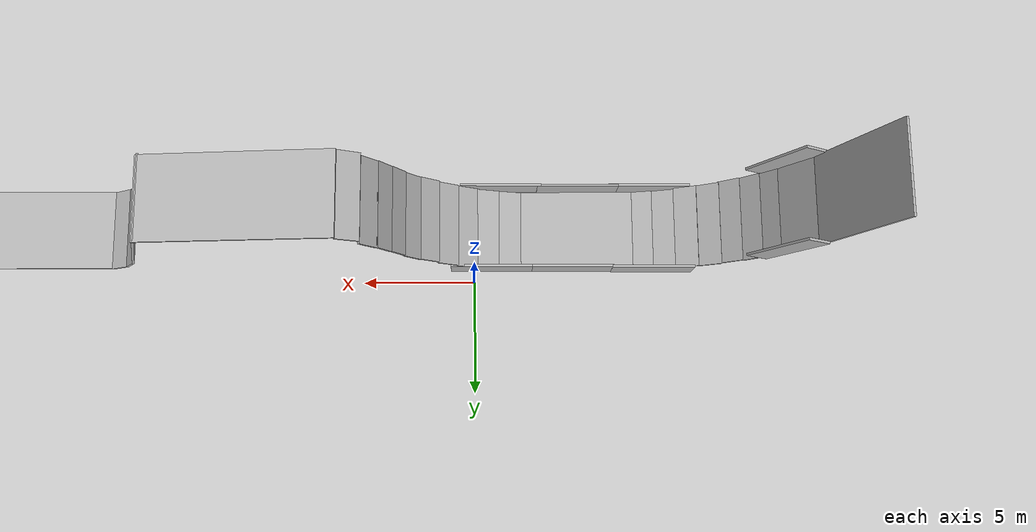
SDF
<sdf version="1.5">
 <world name="default">
  <scene><grid>false</grid></scene>
  <include><uri>model://ground_plane</uri></include>
  <include><uri>model://sun</uri></include>
  <include><uri>model://car</uri></include>
  <scene>
   <grid>0</grid>
   <ambient>0.4 0.4 0.4 1</ambient>
   <background>0.7 0.7 0.7 1</background>
   <shadows>1</shadows>
  </scene>
  <scene>
   <grid>0</grid>
   <ambient>0.4 0.4 0.4 1</ambient>
   <background>0.7 0.7 0.7 1</background>
   <shadows>1</shadows>
  </scene>
  <model name="box2">
   <static>1</static>
   <pose>-13.9546 -1.92457 9.86468 0 1.25 0</pose>
   <link name="link">
    <collision name="collision"><geometry><box><size>5 3.5 0.1</size></box></geometry></collision>
    <visual name="visual"><geometry><box><size>5 3.5 0.1</size></box></geometry></visual>
   </link>
  </model>
  <model name="box3">
   <static>1</static>
   <pose>-12.7345 -1.90568 6.70199 0 1.07879 0</pose>
   <link name="link">
    <collision name="collision"><geometry><box><size>2 3.5 0.1</size></box></geometry></collision>
    <visual name="visual"><geometry><box><size>2 3.5 0.1</size></box></geometry></visual>
   </link>
  </model>
  <model name="box4">
   <static>1</static>
   <pose>-12.0288 -1.95298 5.45892 0 1 0</pose>
   <link name="link">
    <collision name="collision"><geometry><box><size>1 3.5 0.1</size></box></geometry></collision>
    <visual name="visual"><geometry><box><size>1 3.5 0.1</size></box></geometry></visual>
   </link>
  </model>
  <gravity>0 0 -9.8</gravity>
  <magnetic_field>6e-06 2.3e-05 -4.2e-05</magnetic_field>
  <atmosphere type="adiabatic"/>
  <physics type="ode">
   <max_step_size>0.001</max_step_size>
   <real_time_factor>1</real_time_factor>
   <real_time_update_rate>1000</real_time_update_rate>
  </physics>
  <spherical_coordinates>
   <surface_model>EARTH_WGS84</surface_model>
   <latitude_deg>0</latitude_deg>
   <longitude_deg>0</longitude_deg>
   <elevation>0</elevation>
   <heading_deg>0</heading_deg>
  </spherical_coordinates>
  <model name="box4_clone">
   <static>1</static>
   <pose>-11.4372 -1.95416 4.6597 0 0.866937 0</pose>
   <link name="link">
    <collision name="collision"><geometry><box><size>1 3.5 0.1</size></box></geometry></collision>
    <visual name="visual"><geometry><box><size>1 3.5 0.1</size></box></geometry></visual>
   </link>
  </model>
  <model name="box4_clone_clone">
   <static>1</static>
   <pose>-10.7516 -1.97335 3.95794 0 0.731359 0</pose>
   <link name="link">
    <collision name="collision"><geometry><box><size>1 3.5 0.1</size></box></geometry></collision>
    <visual name="visual"><geometry><box><size>1 3.5 0.1</size></box></geometry></visual>
   </link>
  </model>
  <model name="box4_clone_clone_clone">
   <static>1</static>
   <pose>-9.98301 -1.94929 3.37654 0 0.581043 0</pose>
   <link name="link">
    <collision name="collision"><geometry><box><size>1 3.5 0.1</size></box></geometry></collision>
    <visual name="visual"><geometry><box><size>1 3.5 0.1</size></box></geometry></visual>
   </link>
  </model>
  <model name="box4_clone_clone_clone_clone">
   <static>1</static>
   <pose>-9.09861 -1.95741 2.88893 0 0.434816 0</pose>
   <link name="link">
    <collision name="collision"><geometry><box><size>1 3.5 0.1</size></box></geometry></collision>
    <visual name="visual"><geometry><box><size>1 3.5 0.1</size></box></geometry></visual>
   </link>
  </model>
  <model name="box4_clone_clone_clone_clone_clone">
   <static>1</static>
   <pose>-8.18948 -1.90732 2.50992 0 0.351337 0</pose>
   <link name="link">
    <collision name="collision"><geometry><box><size>1 3.5 0.1</size></box></geometry></collision>
    <visual name="visual"><geometry><box><size>1 3.5 0.1</size></box></geometry></visual>
   </link>
  </model>
  <model name="box4_clone_clone_clone_clone_clone_clone">
   <static>1</static>
   <pose>-7.31607 -1.92122 2.23645 0 0.252904 0</pose>
   <link name="link">
    <collision name="collision"><geometry><box><size>1 3.5 0.1</size></box></geometry></collision>
    <visual name="visual"><geometry><box><size>1 3.5 0.1</size></box></geometry></visual>
   </link>
  </model>
  <model name="box2_clone_clone">
   <static>1</static>
   <pose>-4.49723 -1.9353 2.06843 -0.000283 0.024744 -0.003344</pose>
   <link name="link">
    <collision name="collision"><geometry><box><size>5 3.5 0.1</size></box></geometry></collision>
    <visual name="visual"><geometry><box><size>5 3.5 0.1</size></box></geometry></visual>
   </link>
  </model>
  <model name="box1_clone">
   <static>1</static>
   <pose>-878.821 5062.71 16.2056 0 1.3 0</pose>
   <link name="link">
    <collision name="collision"><geometry><box><size>8 3.5 0.1</size></box></geometry></collision>
    <visual name="visual"><geometry><box><size>8 3.5 0.1</size></box></geometry></visual>
   </link>
  </model>
  <model name="box4_clone_clone_clone_clone_clone_clone_clone">
   <static>1</static>
   <pose>-1.53196 -1.93749 2.14941 0.00201 -0.259831 -0.007823</pose>
   <link name="link">
    <collision name="collision"><geometry><box><size>1 3.5 0.1</size></box></geometry></collision>
    <visual name="visual"><geometry><box><size>1 3.5 0.1</size></box></geometry></visual>
   </link>
  </model>
  <model name="box4_clone_clone_clone_clone_clone_clone_clone_clone">
   <static>1</static>
   <pose>-0.587853 -1.95013 2.43151 0 -0.333254 0</pose>
   <link name="link">
    <collision name="collision"><geometry><box><size>1 3.5 0.1</size></box></geometry></collision>
    <visual name="visual"><geometry><box><size>1 3.5 0.1</size></box></geometry></visual>
   </link>
  </model>
  <model name="box4_clone_clone_clone_clone_clone_clone_clone_clone_clone">
   <static>1</static>
   <pose>0.319907 -1.97056 2.86622 0 -0.55323 0</pose>
   <link name="link">
    <collision name="collision"><geometry><box><size>1 3.5 0.1</size></box></geometry></collision>
    <visual name="visual"><geometry><box><size>1 3.5 0.1</size></box></geometry></visual>
   </link>
  </model>
  <model name="box4_clone_clone_clone_clone_clone_clone_clone_clone_clone_clone">
   <static>1</static>
   <pose>1.12251 -1.99561 3.39878 0 -0.615187 0</pose>
   <link name="link">
    <collision name="collision"><geometry><box><size>1 3.5 0.1</size></box></geometry></collision>
    <visual name="visual"><geometry><box><size>1 3.5 0.1</size></box></geometry></visual>
   </link>
  </model>
  <model name="box4_clone_clone_clone_clone_clone_clone_clone_clone_clone_clone_clone">
   <static>1</static>
   <pose>1.89363 -2.03618 4.00549 0 -0.716658 0</pose>
   <link name="link">
    <collision name="collision"><geometry><box><size>1 3.5 0.1</size></box></geometry></collision>
    <visual name="visual"><geometry><box><size>1 3.5 0.1</size></box></geometry></visual>
   </link>
  </model>
  <model name="box4_clone_clone_clone_clone_clone_clone_clone_clone_clone_clone_clone_clone">
   <static>1</static>
   <pose>2.57347 -2.02011 4.71845 0 -0.90249 0</pose>
   <link name="link">
    <collision name="collision"><geometry><box><size>1 3.5 0.1</size></box></geometry></collision>
    <visual name="visual"><geometry><box><size>1 3.5 0.1</size></box></geometry></visual>
   </link>
  </model>
  <model name="box4_clone_clone_clone_clone_clone_clone_clone_clone_clone_clone_clone_clone_clone">
   <static>1</static>
   <pose>3.60349 -2.03992 6.31321 0 -1.02669 0</pose>
   <link name="link">
    <collision name="collision"><geometry><box><size>1 3.5 0.1</size></box></geometry></collision>
    <visual name="visual"><geometry><box><size>1 3.5 0.1</size></box></geometry></visual>
   </link>
  </model>
  <model name="box1_clone_0">
   <static>1</static>
   <pose>9.29929 -2.16319 7.56526 3.14159 -0.092589 3.14159</pose>
   <link name="link">
    <collision name="collision"><geometry><box><size>8 3.5 0.1</size></box></geometry></collision>
    <visual name="visual"><geometry><box><size>8 3.5 0.1</size></box></geometry></visual>
   </link>
  </model>
  <model name="box2_clone_1_clone">
   <static>1</static>
   <pose>13.9651 -2.20261 4.88435 0 1.25 0</pose>
   <link name="link">
    <collision name="collision"><geometry><box><size>5 3.5 0.1</size></box></geometry></collision>
    <visual name="visual"><geometry><box><size>5 3.5 0.1</size></box></geometry></visual>
   </link>
  </model>
  <model name="box4_clone_0">
   <static>1</static>
   <pose>15.0282 -2.21179 2.09295 0 1 0</pose>
   <link name="link">
    <collision name="collision"><geometry><box><size>1 3.5 0.1</size></box></geometry></collision>
    <visual name="visual"><geometry><box><size>1 3.5 0.1</size></box></geometry></visual>
   </link>
  </model>
  <model name="box4_clone_clone_clone_clone_0">
   <static>1</static>
   <pose>15.7067 -2.23109 1.40712 0 0.581043 0</pose>
   <link name="link">
    <collision name="collision"><geometry><box><size>1 3.5 0.1</size></box></geometry></collision>
    <visual name="visual"><geometry><box><size>1 3.5 0.1</size></box></geometry></visual>
   </link>
  </model>
  <model name="box1_clone_0_clone">
   <static>1</static>
   <pose>20.1298 -2.26005 1.10426 3.14159 -0.0069 3.14159</pose>
   <link name="link">
    <collision name="collision"><geometry><box><size>8 3.5 0.1</size></box></geometry></collision>
    <visual name="visual"><geometry><box><size>8 3.5 0.1</size></box></geometry></visual>
   </link>
  </model>
  <model name="box4_clone_clone_clone_clone_clone_clone_clone_clone_clone_clone_clone_0_clone">
   <static>1</static>
   <pose>-1.12768 -3.78073 2.5473 -0.246975 -1.53861 -1.33075</pose>
   <link name="link">
    <collision name="collision"><geometry><box><size>1 3.5 0.1</size></box></geometry></collision>
    <visual name="visual"><geometry><box><size>1 3.5 0.1</size></box></geometry></visual>
   </link>
  </model>
  <model name="box4_clone_clone_clone_clone_clone_clone_clone_clone_clone_clone_clone_0_clone_1">
   <static>1</static>
   <pose>-12.2506 -3.73084 6.81114 -1.55124 -0.431638 -0.07335</pose>
   <link name="link">
    <collision name="collision"><geometry><box><size>1 3.5 0.1</size></box></geometry></collision>
    <visual name="visual"><geometry><box><size>1 3.5 0.1</size></box></geometry></visual>
   </link>
  </model>
  <model name="box4_clone_clone_clone_clone_clone_clone_clone_clone_clone_clone_clone_0_clone_1_clone">
   <static>1</static>
   <pose>-12.1273 -0.176115 6.83667 -1.55124 -0.431638 -0.07335</pose>
   <link name="link">
    <collision name="collision"><geometry><box><size>1 3.5 0.1</size></box></geometry></collision>
    <visual name="visual"><geometry><box><size>1 3.5 0.1</size></box></geometry></visual>
   </link>
  </model>
  <model name="box4_clone_clone_clone_clone_clone_clone_clone_clone_clone_clone_clone_0_clone_clone">
   <static>1</static>
   <pose>-4.47175 -3.75051 2.55315 -0.246974 -1.53861 -1.33075</pose>
   <link name="link">
    <collision name="collision"><geometry><box><size>1 3.5 0.1</size></box></geometry></collision>
    <visual name="visual"><geometry><box><size>1 3.5 0.1</size></box></geometry></visual>
   </link>
  </model>
  <model name="box4_clone_clone_clone_clone_clone_clone_clone_clone_clone_clone_clone_0_clone_clone_clone">
   <static>1</static>
   <pose>-7.5416 -3.75026 2.5721 -0.246974 -1.53861 -1.33075</pose>
   <link name="link">
    <collision name="collision"><geometry><box><size>1 3.5 0.1</size></box></geometry></collision>
    <visual name="visual"><geometry><box><size>1 3.5 0.1</size></box></geometry></visual>
   </link>
  </model>
  <model name="box4_clone_clone_clone_clone_clone_clone_clone_clone_clone_clone_clone_0_clone_clone_clone_clone">
   <static>1</static>
   <pose>-7.64846 -0.190301 2.57084 -0.246974 -1.53861 -1.33075</pose>
   <link name="link">
    <collision name="collision"><geometry><box><size>1 3.5 0.1</size></box></geometry></collision>
    <visual name="visual"><geometry><box><size>1 3.5 0.1</size></box></geometry></visual>
   </link>
  </model>
  <model name="box4_clone_clone_clone_clone_clone_clone_clone_clone_clone_clone_clone_0_clone_clone_clone_clone_0">
   <static>1</static>
   <pose>-4.20004 -0.227253 2.54285 -0.246974 -1.53861 -1.33075</pose>
   <link name="link">
    <collision name="collision"><geometry><box><size>1 3.5 0.1</size></box></geometry></collision>
    <visual name="visual"><geometry><box><size>1 3.5 0.1</size></box></geometry></visual>
   </link>
  </model>
  <model name="box4_clone_clone_clone_clone_clone_clone_clone_clone_clone_clone_clone_0_clone_clone_clone_clone_1">
   <static>1</static>
   <pose>-0.728964 -0.242189 2.51326 -0.246974 -1.53861 -1.33075</pose>
   <link name="link">
    <collision name="collision"><geometry><box><size>1 3.5 0.1</size></box></geometry></collision>
    <visual name="visual"><geometry><box><size>1 3.5 0.1</size></box></geometry></visual>
   </link>
  </model>
  <model name="box4_clone_clone_clone_clone_clone_clone_clone_clone_clone_clone_clone_clone_clone_clone">
   <static>1</static>
   <pose>3.11219 -2.04942 5.50011 0 -1.02669 0</pose>
   <link name="link">
    <collision name="collision"><geometry><box><size>1 3.5 0.1</size></box></geometry></collision>
    <visual name="visual"><geometry><box><size>1 3.5 0.1</size></box></geometry></visual>
   </link>
  </model>
  <model name="box4_clone_clone_clone_clone_clone_clone_clone_clone_clone_clone_clone_clone_clone_clone_clone">
   <static>1</static>
   <pose>4.13922 -2.02284 7.09603 0 -0.910937 0</pose>
   <link name="link">
    <collision name="collision"><geometry><box><size>1 3.5 0.1</size></box></geometry></collision>
    <visual name="visual"><geometry><box><size>1 3.5 0.1</size></box></geometry></visual>
   </link>
  </model>
  <model name="box4_clone_clone_clone_clone_clone_clone_clone_clone_clone_clone_clone_clone_clone_clone_clone_clone">
   <static>1</static>
   <pose>4.87735 -2.1202 7.72087 0 -0.485738 0</pose>
   <link name="link">
    <collision name="collision"><geometry><box><size>1 3.5 0.1</size></box></geometry></collision>
    <visual name="visual"><geometry><box><size>1 3.5 0.1</size></box></geometry></visual>
   </link>
  </model>
 </world>
</sdf>

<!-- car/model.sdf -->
<sdf version='1.7'>
    <model name="my_robot">
      <link name='chassis'>
        <pose>0 0 0.15 0 -0 0</pose>
        <inertial>
          <pose>0.1 0 0 0 -0 0</pose>
          <mass>10</mass>
          <inertia>
            <ixx>0.216667</ixx>
            <iyy>0.841667</iyy>
            <izz>1.04167</izz>
            <ixy>0</ixy>
            <ixz>0</ixz>
            <iyz>0</iyz>
          </inertia>
        </inertial>
        <collision name='collision'>
          <geometry>
            <box>
              <size>1 0.5 0.1</size>
            </box>
          </geometry>
          <max_contacts>10</max_contacts>
          <surface>
            <contact>
              <ode/>
            </contact>
            <bounce/>
            <friction>
              <torsional>
                <ode/>
              </torsional>
              <ode/>
            </friction>
          </surface>
        </collision>
        <visual name='visual'>
          <geometry>
            <box>
              <size>1 0.5 0.1</size>
            </box>
          </geometry>
          <material>
            <script>
              <uri>file://media/materials/scripts/gazebo.material</uri>
              <name>Gazebo/Grey</name>
            </script>
          </material>
        </visual>
        <self_collide>0</self_collide>
        <enable_wind>0</enable_wind>
        <kinematic>0</kinematic>
      </link>
      <link name='wheel_front_left'>
        <pose>0.5 0.298 0.15 -1.5708 -0.087266 0</pose>
        <inertial>
          <mass>0.5</mass>
          <inertia>
            <ixx>0.00307917</ixx>
            <iyy>0.00307917</iyy>
            <izz>0.005625</izz>
            <ixy>0</ixy>
            <ixz>0</ixz>
            <iyz>0</iyz>
          </inertia>
          <pose>0 0 0 0 -0 0</pose>
        </inertial>
        <collision name='collision'>
          <geometry>
            <cylinder>
              <radius>0.2</radius>
              <length>0.08</length>
            </cylinder>
          </geometry>
          <max_contacts>10</max_contacts>
          <surface>
            <contact>
              <ode/>
            </contact>
            <bounce/>
            <friction>
              <torsional>
                <ode/>
              </torsional>
              <ode/>
            </friction>
          </surface>
        </collision>
        <visual name='visual'>
          <geometry>
            <cylinder>
              <radius>0.2</radius>
              <length>0.08</length>
            </cylinder>
          </geometry>
          <material>
            <script>
              <uri>file://media/materials/scripts/gazebo.material</uri>
              <name>Gazebo/Black</name>
            </script>
          </material>
        </visual>
        <self_collide>0</self_collide>
        <enable_wind>0</enable_wind>
        <kinematic>0</kinematic>
      </link>
      <joint name='wheel_front_left_steer' type='revolute'>
        <parent>chassis</parent>
        <child>wheel_front_left</child>
        <axis>
          <xyz>0 0 1</xyz>
          <limit>
            <upper>1e+16</upper>
            <lower>-1e+16</lower>
          </limit>
          <dynamics>
            <spring_reference>0</spring_reference>
            <spring_stiffness>0</spring_stiffness>
          </dynamics>
        </axis>
      </joint>
      <link name='wheel_front_right'>
        <pose>0.5 -0.298 0.15 -1.5708 -0.087266 0</pose>
        <inertial>
          <mass>0.5</mass>
          <inertia>
            <ixx>0.00307917</ixx>
            <iyy>0.00307917</iyy>
            <izz>0.005625</izz>
            <ixy>0</ixy>
            <ixz>0</ixz>
            <iyz>0</iyz>
          </inertia>
          <pose>0 0 0 0 -0 0</pose>
        </inertial>
        <collision name='collision'>
          <geometry>
            <cylinder>
              <radius>0.2</radius>
              <length>0.08</length>
            </cylinder>
          </geometry>
          <max_contacts>10</max_contacts>
          <surface>
            <contact>
              <ode/>
            </contact>
            <bounce/>
            <friction>
              <torsional>
                <ode/>
              </torsional>
              <ode/>
            </friction>
          </surface>
        </collision>
        <visual name='visual'>
          <geometry>
            <cylinder>
              <radius>0.2</radius>
              <length>0.08</length>
            </cylinder>
          </geometry>
          <material>
            <script>
              <uri>file://media/materials/scripts/gazebo.material</uri>
              <name>Gazebo/Black</name>
            </script>
          </material>
        </visual>
        <self_collide>0</self_collide>
        <enable_wind>0</enable_wind>
        <kinematic>0</kinematic>
      </link>
      <joint name='wheel_front_right_steer' type='revolute'>
        <parent>chassis</parent>
        <child>wheel_front_right</child>
        <axis>
          <xyz>0 0 1</xyz>
          <limit>
            <upper>1e+16</upper>
            <lower>-1e+16</lower>
          </limit>
          <dynamics>
            <spring_reference>0</spring_reference>
            <spring_stiffness>0</spring_stiffness>
          </dynamics>
        </axis>
      </joint>
      <link name='wheel_rear_left'>
        <pose>-0.5 0.298 0.15 -1.5708 0 0</pose>
        <inertial>
          <mass>0.5</mass>
          <inertia>
            <ixx>0.00307917</ixx>
            <iyy>0.00307917</iyy>
            <izz>0.005625</izz>
            <ixy>0</ixy>
            <ixz>0</ixz>
            <iyz>0</iyz>
          </inertia>
          <pose>0 0 0 0 -0 0</pose>
        </inertial>
        <collision name='collision'>
          <geometry>
            <cylinder>
              <radius>0.2</radius>
              <length>0.08</length>
            </cylinder>
          </geometry>
          <max_contacts>10</max_contacts>
          <surface>
            <contact>
              <ode/>
            </contact>
            <bounce/>
            <friction>
              <torsional>
                <ode/>
              </torsional>
              <ode/>
            </friction>
          </surface>
        </collision>
        <visual name='visual'>
          <geometry>
            <cylinder>
              <radius>0.2</radius>
              <length>0.08</length>
            </cylinder>
          </geometry>
          <material>
            <script>
              <uri>file://media/materials/scripts/gazebo.material</uri>
              <name>Gazebo/Black</name>
            </script>
          </material>
        </visual>
        <self_collide>0</self_collide>
        <enable_wind>0</enable_wind>
        <kinematic>0</kinematic>
      </link>
      <joint name='left_wheel_back' type='revolute'>
        <parent>chassis</parent>
        <child>wheel_rear_left</child>
        <axis>
          <xyz>0 0 1</xyz>
          <limit>
            <lower>-1e+16</lower>
            <upper>1e+16</upper>
          </limit>
          <dynamics>
            <spring_reference>0</spring_reference>
            <spring_stiffness>0</spring_stiffness>
          </dynamics>
        </axis>
      </joint>
      <link name='wheel_rear_right'>
        <pose>-0.5 -0.298 0.15 -1.5708 0 0</pose>
        <inertial>
          <mass>0.5</mass>
          <inertia>
            <ixx>0.00307917</ixx>
            <iyy>0.00307917</iyy>
            <izz>0.005625</izz>
            <ixy>0</ixy>
            <ixz>0</ixz>
            <iyz>0</iyz>
          </inertia>
          <pose>0 0 0 0 -0 0</pose>
        </inertial>
        <collision name='collision'>
          <geometry>
            <cylinder>
              <radius>0.2</radius>
              <length>0.08</length>
            </cylinder>
          </geometry>
          <max_contacts>10</max_contacts>
          <surface>
            <contact>
              <ode/>
            </contact>
            <bounce/>
            <friction>
              <torsional>
                <ode/>
              </torsional>
              <ode/>
            </friction>
          </surface>
        </collision>
        <visual name='visual'>
          <geometry>
            <cylinder>
              <radius>0.2</radius>
              <length>0.08</length>
            </cylinder>
          </geometry>
          <material>
            <script>
              <uri>file://media/materials/scripts/gazebo.material</uri>
              <name>Gazebo/Black</name>
            </script>
          </material>
        </visual>
        <self_collide>0</self_collide>
        <enable_wind>0</enable_wind>
        <kinematic>0</kinematic>
      </link>
      <joint name='right_wheel_back' type='revolute'>
        <parent>chassis</parent>
        <child>wheel_rear_right</child>
        <axis>
          <xyz>0 0 1</xyz>
          <limit>
            <lower>-1e+16</lower>
            <upper>1e+16</upper>
          </limit>
          <dynamics>
            <spring_reference>0</spring_reference>
            <spring_stiffness>0</spring_stiffness>
          </dynamics>
        </axis>
      </joint>
      <pose>2.7216 -2.1701 0 0 -0 0</pose>
    </model>
</sdf>
